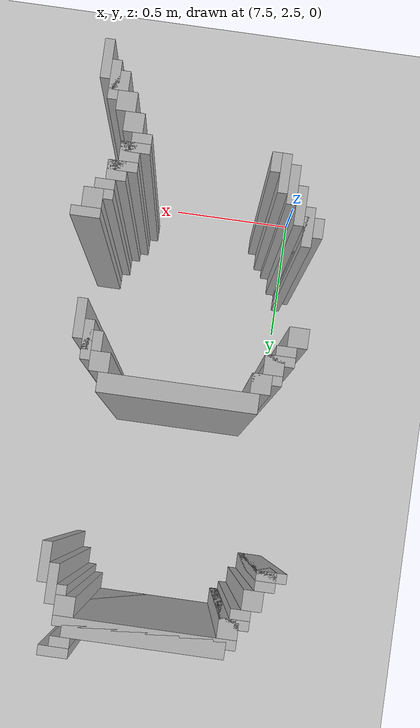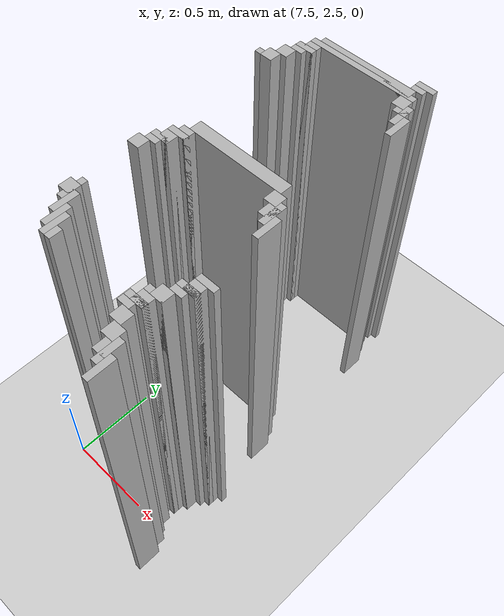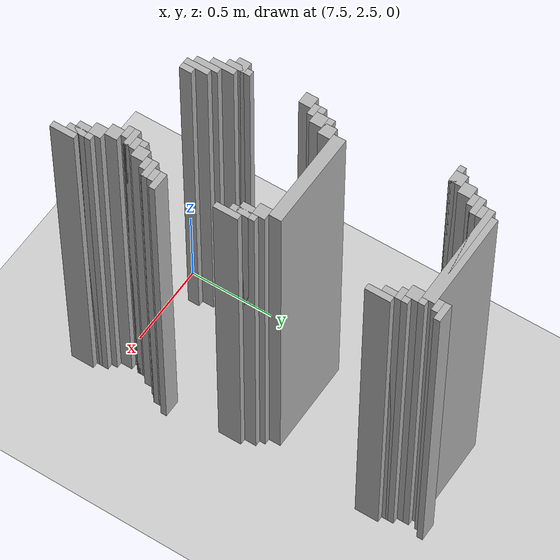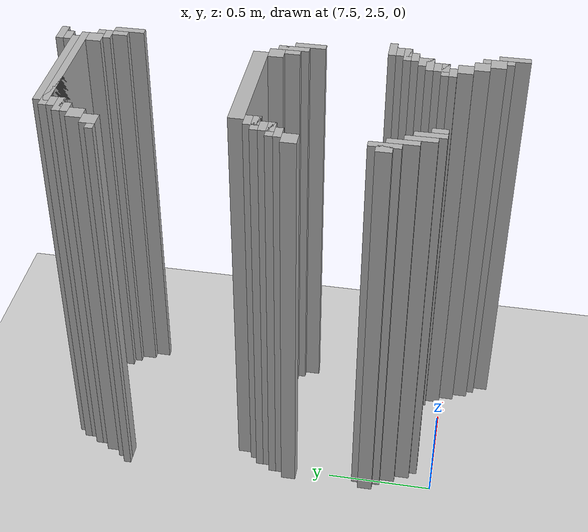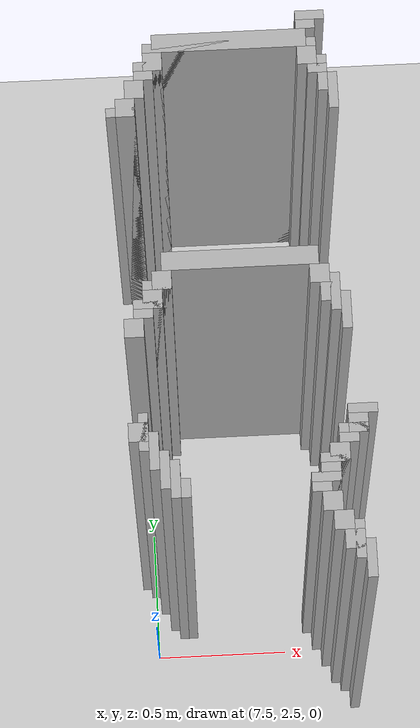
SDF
<sdf version="1.6">
 <world name="slam_world">
  <model name="ground_plane">
   <static>true</static>
   <link name="link">
    <collision name="collision">
     <geometry><plane><normal>0 0 1</normal><size>100 100</size></plane></geometry>
    </collision>
    <visual name="visual">
     <geometry><plane><normal>0 0 1</normal><size>100 100</size></plane></geometry>
     <material>
      <ambient>0.8 0.8 0.8 1</ambient>
      <diffuse>0.8 0.8 0.8 1</diffuse>
      <specular>0.8 0.8 0.8 1</specular>
     </material>
    </visual>
   </link>
  </model>
  <model name="wall_4323">
   <static>true</static>
   <pose>8.161252900232018 4.367749419953596 1.0 0 0 0</pose>
   <link name="link">
    <collision name="collision">
     <geometry><box><size>0.10440835266821345 0.03480278422273782 2.0</size></box></geometry>
    </collision>
    <visual name="visual">
     <geometry><box><size>0.10440835266821345 0.03480278422273782 2.0</size></box></geometry>
     <material><ambient>0.5 0.5 0.5 1</ambient><diffuse>0.7 0.7 0.7 1</diffuse></material>
    </visual>
   </link>
  </model>
  <model name="wall_4331">
   <static>true</static>
   <pose>8.14385150812065 4.332946635730858 1.0 0 0 0</pose>
   <link name="link">
    <collision name="collision">
     <geometry><box><size>0.06960556844547564 0.03480278422273782 2.0</size></box></geometry>
    </collision>
    <visual name="visual">
     <geometry><box><size>0.06960556844547564 0.03480278422273782 2.0</size></box></geometry>
     <material><ambient>0.5 0.5 0.5 1</ambient><diffuse>0.7 0.7 0.7 1</diffuse></material>
    </visual>
   </link>
  </model>
  <model name="wall_4339">
   <static>true</static>
   <pose>7.865429234338746 4.280742459396752 1.0 0 0 0</pose>
   <link name="link">
    <collision name="collision">
     <geometry><box><size>0.5568445475638051 0.06960556844547564 2.0</size></box></geometry>
    </collision>
    <visual name="visual">
     <geometry><box><size>0.5568445475638051 0.06960556844547564 2.0</size></box></geometry>
     <material><ambient>0.5 0.5 0.5 1</ambient><diffuse>0.7 0.7 0.7 1</diffuse></material>
    </visual>
   </link>
  </model>
  <model name="wall_4351">
   <static>true</static>
   <pose>7.865429234338746 4.263341067285383 1.0 0 0 0</pose>
   <link name="link">
    <collision name="collision">
     <geometry><box><size>0.6264501160092807 0.03480278422273782 2.0</size></box></geometry>
    </collision>
    <visual name="visual">
     <geometry><box><size>0.6264501160092807 0.03480278422273782 2.0</size></box></geometry>
     <material><ambient>0.5 0.5 0.5 1</ambient><diffuse>0.7 0.7 0.7 1</diffuse></material>
    </visual>
   </link>
  </model>
  <model name="wall_4365">
   <static>true</static>
   <pose>7.587006960556844 4.211136890951276 1.0 0 0 0</pose>
   <link name="link">
    <collision name="collision">
     <geometry><box><size>0.06960556844547564 0.06960556844547564 2.0</size></box></geometry>
    </collision>
    <visual name="visual">
     <geometry><box><size>0.06960556844547564 0.06960556844547564 2.0</size></box></geometry>
     <material><ambient>0.5 0.5 0.5 1</ambient><diffuse>0.7 0.7 0.7 1</diffuse></material>
    </visual>
   </link>
  </model>
  <model name="wall_4366">
   <static>true</static>
   <pose>8.14385150812065 4.211136890951276 1.0 0 0 0</pose>
   <link name="link">
    <collision name="collision">
     <geometry><box><size>0.06960556844547564 0.06960556844547564 2.0</size></box></geometry>
    </collision>
    <visual name="visual">
     <geometry><box><size>0.06960556844547564 0.06960556844547564 2.0</size></box></geometry>
     <material><ambient>0.5 0.5 0.5 1</ambient><diffuse>0.7 0.7 0.7 1</diffuse></material>
    </visual>
   </link>
  </model>
  <model name="wall_4381">
   <static>true</static>
   <pose>7.569605568445476 4.193735498839907 1.0 0 0 0</pose>
   <link name="link">
    <collision name="collision">
     <geometry><box><size>0.10440835266821345 0.03480278422273782 2.0</size></box></geometry>
    </collision>
    <visual name="visual">
     <geometry><box><size>0.10440835266821345 0.03480278422273782 2.0</size></box></geometry>
     <material><ambient>0.5 0.5 0.5 1</ambient><diffuse>0.7 0.7 0.7 1</diffuse></material>
    </visual>
   </link>
  </model>
  <model name="wall_4382">
   <static>true</static>
   <pose>8.196055684454755 4.1415313225058 1.0 0 0 0</pose>
   <link name="link">
    <collision name="collision">
     <geometry><box><size>0.03480278422273782 0.13921113689095127 2.0</size></box></geometry>
    </collision>
    <visual name="visual">
     <geometry><box><size>0.03480278422273782 0.13921113689095127 2.0</size></box></geometry>
     <material><ambient>0.5 0.5 0.5 1</ambient><diffuse>0.7 0.7 0.7 1</diffuse></material>
    </visual>
   </link>
  </model>
  <model name="wall_4396">
   <static>true</static>
   <pose>7.552204176334106 4.158932714617169 1.0 0 0 0</pose>
   <link name="link">
    <collision name="collision">
     <geometry><box><size>0.06960556844547564 0.03480278422273782 2.0</size></box></geometry>
    </collision>
    <visual name="visual">
     <geometry><box><size>0.06960556844547564 0.03480278422273782 2.0</size></box></geometry>
     <material><ambient>0.5 0.5 0.5 1</ambient><diffuse>0.7 0.7 0.7 1</diffuse></material>
    </visual>
   </link>
  </model>
  <model name="wall_4397">
   <static>true</static>
   <pose>8.178654292343387 4.158932714617169 1.0 0 0 0</pose>
   <link name="link">
    <collision name="collision">
     <geometry><box><size>0.06960556844547564 0.03480278422273782 2.0</size></box></geometry>
    </collision>
    <visual name="visual">
     <geometry><box><size>0.06960556844547564 0.03480278422273782 2.0</size></box></geometry>
     <material><ambient>0.5 0.5 0.5 1</ambient><diffuse>0.7 0.7 0.7 1</diffuse></material>
    </visual>
   </link>
  </model>
  <model name="wall_4410">
   <static>true</static>
   <pose>7.517401392111369 4.106728538283062 1.0 0 0 0</pose>
   <link name="link">
    <collision name="collision">
     <geometry><box><size>0.06960556844547564 0.06960556844547564 2.0</size></box></geometry>
    </collision>
    <visual name="visual">
     <geometry><box><size>0.06960556844547564 0.06960556844547564 2.0</size></box></geometry>
     <material><ambient>0.5 0.5 0.5 1</ambient><diffuse>0.7 0.7 0.7 1</diffuse></material>
    </visual>
   </link>
  </model>
  <model name="wall_4411">
   <static>true</static>
   <pose>8.230858468677495 4.071925754060325 1.0 0 0 0</pose>
   <link name="link">
    <collision name="collision">
     <geometry><box><size>0.03480278422273782 0.13921113689095127 2.0</size></box></geometry>
    </collision>
    <visual name="visual">
     <geometry><box><size>0.03480278422273782 0.13921113689095127 2.0</size></box></geometry>
     <material><ambient>0.5 0.5 0.5 1</ambient><diffuse>0.7 0.7 0.7 1</diffuse></material>
    </visual>
   </link>
  </model>
  <model name="wall_4426">
   <static>true</static>
   <pose>7.48259860788863 4.037122969837587 1.0 0 0 0</pose>
   <link name="link">
    <collision name="collision">
     <geometry><box><size>0.06960556844547564 0.06960556844547564 2.0</size></box></geometry>
    </collision>
    <visual name="visual">
     <geometry><box><size>0.06960556844547564 0.06960556844547564 2.0</size></box></geometry>
     <material><ambient>0.5 0.5 0.5 1</ambient><diffuse>0.7 0.7 0.7 1</diffuse></material>
    </visual>
   </link>
  </model>
  <model name="wall_4442">
   <static>true</static>
   <pose>7.465197215777262 4.019721577726218 1.0 0 0 0</pose>
   <link name="link">
    <collision name="collision">
     <geometry><box><size>0.10440835266821345 0.03480278422273782 2.0</size></box></geometry>
    </collision>
    <visual name="visual">
     <geometry><box><size>0.10440835266821345 0.03480278422273782 2.0</size></box></geometry>
     <material><ambient>0.5 0.5 0.5 1</ambient><diffuse>0.7 0.7 0.7 1</diffuse></material>
    </visual>
   </link>
  </model>
  <model name="wall_4596">
   <static>true</static>
   <pose>7.865429234338746 3.445475638051044 1.0 0 0 0</pose>
   <link name="link">
    <collision name="collision">
     <geometry><box><size>0.5568445475638051 0.06960556844547564 2.0</size></box></geometry>
    </collision>
    <visual name="visual">
     <geometry><box><size>0.5568445475638051 0.06960556844547564 2.0</size></box></geometry>
     <material><ambient>0.5 0.5 0.5 1</ambient><diffuse>0.7 0.7 0.7 1</diffuse></material>
    </visual>
   </link>
  </model>
  <model name="wall_4616">
   <static>true</static>
   <pose>7.587006960556844 3.3758700696055683 1.0 0 0 0</pose>
   <link name="link">
    <collision name="collision">
     <geometry><box><size>0.06960556844547564 0.06960556844547564 2.0</size></box></geometry>
    </collision>
    <visual name="visual">
     <geometry><box><size>0.06960556844547564 0.06960556844547564 2.0</size></box></geometry>
     <material><ambient>0.5 0.5 0.5 1</ambient><diffuse>0.7 0.7 0.7 1</diffuse></material>
    </visual>
   </link>
  </model>
  <model name="wall_4617">
   <static>true</static>
   <pose>8.14385150812065 3.3758700696055683 1.0 0 0 0</pose>
   <link name="link">
    <collision name="collision">
     <geometry><box><size>0.06960556844547564 0.06960556844547564 2.0</size></box></geometry>
    </collision>
    <visual name="visual">
     <geometry><box><size>0.06960556844547564 0.06960556844547564 2.0</size></box></geometry>
     <material><ambient>0.5 0.5 0.5 1</ambient><diffuse>0.7 0.7 0.7 1</diffuse></material>
    </visual>
   </link>
  </model>
  <model name="wall_4633">
   <static>true</static>
   <pose>7.569605568445476 3.358468677494199 1.0 0 0 0</pose>
   <link name="link">
    <collision name="collision">
     <geometry><box><size>0.10440835266821345 0.03480278422273782 2.0</size></box></geometry>
    </collision>
    <visual name="visual">
     <geometry><box><size>0.10440835266821345 0.03480278422273782 2.0</size></box></geometry>
     <material><ambient>0.5 0.5 0.5 1</ambient><diffuse>0.7 0.7 0.7 1</diffuse></material>
    </visual>
   </link>
  </model>
  <model name="wall_4634">
   <static>true</static>
   <pose>8.196055684454755 3.3062645011600926 1.0 0 0 0</pose>
   <link name="link">
    <collision name="collision">
     <geometry><box><size>0.03480278422273782 0.13921113689095127 2.0</size></box></geometry>
    </collision>
    <visual name="visual">
     <geometry><box><size>0.03480278422273782 0.13921113689095127 2.0</size></box></geometry>
     <material><ambient>0.5 0.5 0.5 1</ambient><diffuse>0.7 0.7 0.7 1</diffuse></material>
    </visual>
   </link>
  </model>
  <model name="wall_4650">
   <static>true</static>
   <pose>7.552204176334106 3.3062645011600926 1.0 0 0 0</pose>
   <link name="link">
    <collision name="collision">
     <geometry><box><size>0.06960556844547564 0.06960556844547564 2.0</size></box></geometry>
    </collision>
    <visual name="visual">
     <geometry><box><size>0.06960556844547564 0.06960556844547564 2.0</size></box></geometry>
     <material><ambient>0.5 0.5 0.5 1</ambient><diffuse>0.7 0.7 0.7 1</diffuse></material>
    </visual>
   </link>
  </model>
  <model name="wall_4651">
   <static>true</static>
   <pose>8.178654292343387 3.3062645011600926 1.0 0 0 0</pose>
   <link name="link">
    <collision name="collision">
     <geometry><box><size>0.06960556844547564 0.06960556844547564 2.0</size></box></geometry>
    </collision>
    <visual name="visual">
     <geometry><box><size>0.06960556844547564 0.06960556844547564 2.0</size></box></geometry>
     <material><ambient>0.5 0.5 0.5 1</ambient><diffuse>0.7 0.7 0.7 1</diffuse></material>
    </visual>
   </link>
  </model>
  <model name="wall_4667">
   <static>true</static>
   <pose>7.534802784222737 3.288863109048724 1.0 0 0 0</pose>
   <link name="link">
    <collision name="collision">
     <geometry><box><size>0.10440835266821345 0.03480278422273782 2.0</size></box></geometry>
    </collision>
    <visual name="visual">
     <geometry><box><size>0.10440835266821345 0.03480278422273782 2.0</size></box></geometry>
     <material><ambient>0.5 0.5 0.5 1</ambient><diffuse>0.7 0.7 0.7 1</diffuse></material>
    </visual>
   </link>
  </model>
  <model name="wall_4668">
   <static>true</static>
   <pose>8.230858468677495 3.236658932714617 1.0 0 0 0</pose>
   <link name="link">
    <collision name="collision">
     <geometry><box><size>0.03480278422273782 0.13921113689095127 2.0</size></box></geometry>
    </collision>
    <visual name="visual">
     <geometry><box><size>0.03480278422273782 0.13921113689095127 2.0</size></box></geometry>
     <material><ambient>0.5 0.5 0.5 1</ambient><diffuse>0.7 0.7 0.7 1</diffuse></material>
    </visual>
   </link>
  </model>
  <model name="wall_4679">
   <static>true</static>
   <pose>7.517401392111369 3.254060324825986 1.0 0 0 0</pose>
   <link name="link">
    <collision name="collision">
     <geometry><box><size>0.06960556844547564 0.03480278422273782 2.0</size></box></geometry>
    </collision>
    <visual name="visual">
     <geometry><box><size>0.06960556844547564 0.03480278422273782 2.0</size></box></geometry>
     <material><ambient>0.5 0.5 0.5 1</ambient><diffuse>0.7 0.7 0.7 1</diffuse></material>
    </visual>
   </link>
  </model>
  <model name="wall_4692">
   <static>true</static>
   <pose>7.48259860788863 3.201856148491879 1.0 0 0 0</pose>
   <link name="link">
    <collision name="collision">
     <geometry><box><size>0.06960556844547564 0.06960556844547564 2.0</size></box></geometry>
    </collision>
    <visual name="visual">
     <geometry><box><size>0.06960556844547564 0.06960556844547564 2.0</size></box></geometry>
     <material><ambient>0.5 0.5 0.5 1</ambient><diffuse>0.7 0.7 0.7 1</diffuse></material>
    </visual>
   </link>
  </model>
  <model name="wall_4801">
   <static>true</static>
   <pose>7.5 2.819025522041763 1.0 0 0 0</pose>
   <link name="link">
    <collision name="collision">
     <geometry><box><size>0.03480278422273782 0.13921113689095127 2.0</size></box></geometry>
    </collision>
    <visual name="visual">
     <geometry><box><size>0.03480278422273782 0.13921113689095127 2.0</size></box></geometry>
     <material><ambient>0.5 0.5 0.5 1</ambient><diffuse>0.7 0.7 0.7 1</diffuse></material>
    </visual>
   </link>
  </model>
  <model name="wall_4802">
   <static>true</static>
   <pose>8.265661252900232 2.87122969837587 1.0 0 0 0</pose>
   <link name="link">
    <collision name="collision">
     <geometry><box><size>0.10440835266821345 0.03480278422273782 2.0</size></box></geometry>
    </collision>
    <visual name="visual">
     <geometry><box><size>0.10440835266821345 0.03480278422273782 2.0</size></box></geometry>
     <material><ambient>0.5 0.5 0.5 1</ambient><diffuse>0.7 0.7 0.7 1</diffuse></material>
    </visual>
   </link>
  </model>
  <model name="wall_4814">
   <static>true</static>
   <pose>7.48259860788863 2.819025522041763 1.0 0 0 0</pose>
   <link name="link">
    <collision name="collision">
     <geometry><box><size>0.06960556844547564 0.06960556844547564 2.0</size></box></geometry>
    </collision>
    <visual name="visual">
     <geometry><box><size>0.06960556844547564 0.06960556844547564 2.0</size></box></geometry>
     <material><ambient>0.5 0.5 0.5 1</ambient><diffuse>0.7 0.7 0.7 1</diffuse></material>
    </visual>
   </link>
  </model>
  <model name="wall_4815">
   <static>true</static>
   <pose>8.248259860788863 2.819025522041763 1.0 0 0 0</pose>
   <link name="link">
    <collision name="collision">
     <geometry><box><size>0.06960556844547564 0.06960556844547564 2.0</size></box></geometry>
    </collision>
    <visual name="visual">
     <geometry><box><size>0.06960556844547564 0.06960556844547564 2.0</size></box></geometry>
     <material><ambient>0.5 0.5 0.5 1</ambient><diffuse>0.7 0.7 0.7 1</diffuse></material>
    </visual>
   </link>
  </model>
  <model name="wall_4827">
   <static>true</static>
   <pose>7.534802784222737 2.7494199535962878 1.0 0 0 0</pose>
   <link name="link">
    <collision name="collision">
     <geometry><box><size>0.03480278422273782 0.13921113689095127 2.0</size></box></geometry>
    </collision>
    <visual name="visual">
     <geometry><box><size>0.03480278422273782 0.13921113689095127 2.0</size></box></geometry>
     <material><ambient>0.5 0.5 0.5 1</ambient><diffuse>0.7 0.7 0.7 1</diffuse></material>
    </visual>
   </link>
  </model>
  <model name="wall_4828">
   <static>true</static>
   <pose>8.230858468677495 2.8016241299303943 1.0 0 0 0</pose>
   <link name="link">
    <collision name="collision">
     <geometry><box><size>0.10440835266821345 0.03480278422273782 2.0</size></box></geometry>
    </collision>
    <visual name="visual">
     <geometry><box><size>0.10440835266821345 0.03480278422273782 2.0</size></box></geometry>
     <material><ambient>0.5 0.5 0.5 1</ambient><diffuse>0.7 0.7 0.7 1</diffuse></material>
    </visual>
   </link>
  </model>
  <model name="wall_4837">
   <static>true</static>
   <pose>8.213457076566124 2.7668213457076565 1.0 0 0 0</pose>
   <link name="link">
    <collision name="collision">
     <geometry><box><size>0.06960556844547564 0.03480278422273782 2.0</size></box></geometry>
    </collision>
    <visual name="visual">
     <geometry><box><size>0.06960556844547564 0.03480278422273782 2.0</size></box></geometry>
     <material><ambient>0.5 0.5 0.5 1</ambient><diffuse>0.7 0.7 0.7 1</diffuse></material>
    </visual>
   </link>
  </model>
  <model name="wall_4844">
   <static>true</static>
   <pose>7.569605568445476 2.679814385150812 1.0 0 0 0</pose>
   <link name="link">
    <collision name="collision">
     <geometry><box><size>0.03480278422273782 0.13921113689095127 2.0</size></box></geometry>
    </collision>
    <visual name="visual">
     <geometry><box><size>0.03480278422273782 0.13921113689095127 2.0</size></box></geometry>
     <material><ambient>0.5 0.5 0.5 1</ambient><diffuse>0.7 0.7 0.7 1</diffuse></material>
    </visual>
   </link>
  </model>
  <model name="wall_4845">
   <static>true</static>
   <pose>8.178654292343387 2.71461716937355 1.0 0 0 0</pose>
   <link name="link">
    <collision name="collision">
     <geometry><box><size>0.06960556844547564 0.06960556844547564 2.0</size></box></geometry>
    </collision>
    <visual name="visual">
     <geometry><box><size>0.06960556844547564 0.06960556844547564 2.0</size></box></geometry>
     <material><ambient>0.5 0.5 0.5 1</ambient><diffuse>0.7 0.7 0.7 1</diffuse></material>
    </visual>
   </link>
  </model>
  <model name="wall_4857">
   <static>true</static>
   <pose>7.604408352668213 2.645011600928074 1.0 0 0 0</pose>
   <link name="link">
    <collision name="collision">
     <geometry><box><size>0.03480278422273782 0.13921113689095127 2.0</size></box></geometry>
    </collision>
    <visual name="visual">
     <geometry><box><size>0.03480278422273782 0.13921113689095127 2.0</size></box></geometry>
     <material><ambient>0.5 0.5 0.5 1</ambient><diffuse>0.7 0.7 0.7 1</diffuse></material>
    </visual>
   </link>
  </model>
  <model name="wall_4858">
   <static>true</static>
   <pose>8.161252900232018 2.6972157772621808 1.0 0 0 0</pose>
   <link name="link">
    <collision name="collision">
     <geometry><box><size>0.10440835266821345 0.03480278422273782 2.0</size></box></geometry>
    </collision>
    <visual name="visual">
     <geometry><box><size>0.10440835266821345 0.03480278422273782 2.0</size></box></geometry>
     <material><ambient>0.5 0.5 0.5 1</ambient><diffuse>0.7 0.7 0.7 1</diffuse></material>
    </visual>
   </link>
  </model>
  <model name="wall_4867">
   <static>true</static>
   <pose>8.14385150812065 2.645011600928074 1.0 0 0 0</pose>
   <link name="link">
    <collision name="collision">
     <geometry><box><size>0.06960556844547564 0.06960556844547564 2.0</size></box></geometry>
    </collision>
    <visual name="visual">
     <geometry><box><size>0.06960556844547564 0.06960556844547564 2.0</size></box></geometry>
     <material><ambient>0.5 0.5 0.5 1</ambient><diffuse>0.7 0.7 0.7 1</diffuse></material>
    </visual>
   </link>
  </model>
  <model name="wall_4875">
   <static>true</static>
   <pose>7.6392111368909505 2.6102088167053363 1.0 0 0 0</pose>
   <link name="link">
    <collision name="collision">
     <geometry><box><size>0.03480278422273782 0.06960556844547564 2.0</size></box></geometry>
    </collision>
    <visual name="visual">
     <geometry><box><size>0.03480278422273782 0.06960556844547564 2.0</size></box></geometry>
     <material><ambient>0.5 0.5 0.5 1</ambient><diffuse>0.7 0.7 0.7 1</diffuse></material>
    </visual>
   </link>
  </model>
  <model name="wall_4876">
   <static>true</static>
   <pose>8.12645011600928 2.627610208816705 1.0 0 0 0</pose>
   <link name="link">
    <collision name="collision">
     <geometry><box><size>0.10440835266821345 0.03480278422273782 2.0</size></box></geometry>
    </collision>
    <visual name="visual">
     <geometry><box><size>0.10440835266821345 0.03480278422273782 2.0</size></box></geometry>
     <material><ambient>0.5 0.5 0.5 1</ambient><diffuse>0.7 0.7 0.7 1</diffuse></material>
    </visual>
   </link>
  </model>
  <model name="wall_4890">
   <static>true</static>
   <pose>8.109048723897912 2.5928074245939676 1.0 0 0 0</pose>
   <link name="link">
    <collision name="collision">
     <geometry><box><size>0.06960556844547564 0.03480278422273782 2.0</size></box></geometry>
    </collision>
    <visual name="visual">
     <geometry><box><size>0.06960556844547564 0.03480278422273782 2.0</size></box></geometry>
     <material><ambient>0.5 0.5 0.5 1</ambient><diffuse>0.7 0.7 0.7 1</diffuse></material>
    </visual>
   </link>
  </model>
  <model name="wall_4904">
   <static>true</static>
   <pose>8.14385150812065 2.5406032482598606 1.0 0 0 0</pose>
   <link name="link">
    <collision name="collision">
     <geometry><box><size>0.06960556844547564 0.06960556844547564 2.0</size></box></geometry>
    </collision>
    <visual name="visual">
     <geometry><box><size>0.06960556844547564 0.06960556844547564 2.0</size></box></geometry>
     <material><ambient>0.5 0.5 0.5 1</ambient><diffuse>0.7 0.7 0.7 1</diffuse></material>
    </visual>
   </link>
  </model>
  <model name="wall_4931">
   <static>true</static>
   <pose>8.178654292343387 2.470997679814385 1.0 0 0 0</pose>
   <link name="link">
    <collision name="collision">
     <geometry><box><size>0.06960556844547564 0.06960556844547564 2.0</size></box></geometry>
    </collision>
    <visual name="visual">
     <geometry><box><size>0.06960556844547564 0.06960556844547564 2.0</size></box></geometry>
     <material><ambient>0.5 0.5 0.5 1</ambient><diffuse>0.7 0.7 0.7 1</diffuse></material>
    </visual>
   </link>
  </model>
  <model name="wall_4948">
   <static>true</static>
   <pose>8.230858468677495 2.4013921113689096 1.0 0 0 0</pose>
   <link name="link">
    <collision name="collision">
     <geometry><box><size>0.03480278422273782 0.13921113689095127 2.0</size></box></geometry>
    </collision>
    <visual name="visual">
     <geometry><box><size>0.03480278422273782 0.13921113689095127 2.0</size></box></geometry>
     <material><ambient>0.5 0.5 0.5 1</ambient><diffuse>0.7 0.7 0.7 1</diffuse></material>
    </visual>
   </link>
  </model>
  <model name="wall_4963">
   <static>true</static>
   <pose>8.213457076566124 2.4013921113689096 1.0 0 0 0</pose>
   <link name="link">
    <collision name="collision">
     <geometry><box><size>0.06960556844547564 0.06960556844547564 2.0</size></box></geometry>
    </collision>
    <visual name="visual">
     <geometry><box><size>0.06960556844547564 0.06960556844547564 2.0</size></box></geometry>
     <material><ambient>0.5 0.5 0.5 1</ambient><diffuse>0.7 0.7 0.7 1</diffuse></material>
    </visual>
   </link>
  </model>
  <model name="wall_4979">
   <static>true</static>
   <pose>8.265661252900232 2.331786542923434 1.0 0 0 0</pose>
   <link name="link">
    <collision name="collision">
     <geometry><box><size>0.03480278422273782 0.13921113689095127 2.0</size></box></geometry>
    </collision>
    <visual name="visual">
     <geometry><box><size>0.03480278422273782 0.13921113689095127 2.0</size></box></geometry>
     <material><ambient>0.5 0.5 0.5 1</ambient><diffuse>0.7 0.7 0.7 1</diffuse></material>
    </visual>
   </link>
  </model>
 </world>
</sdf>
